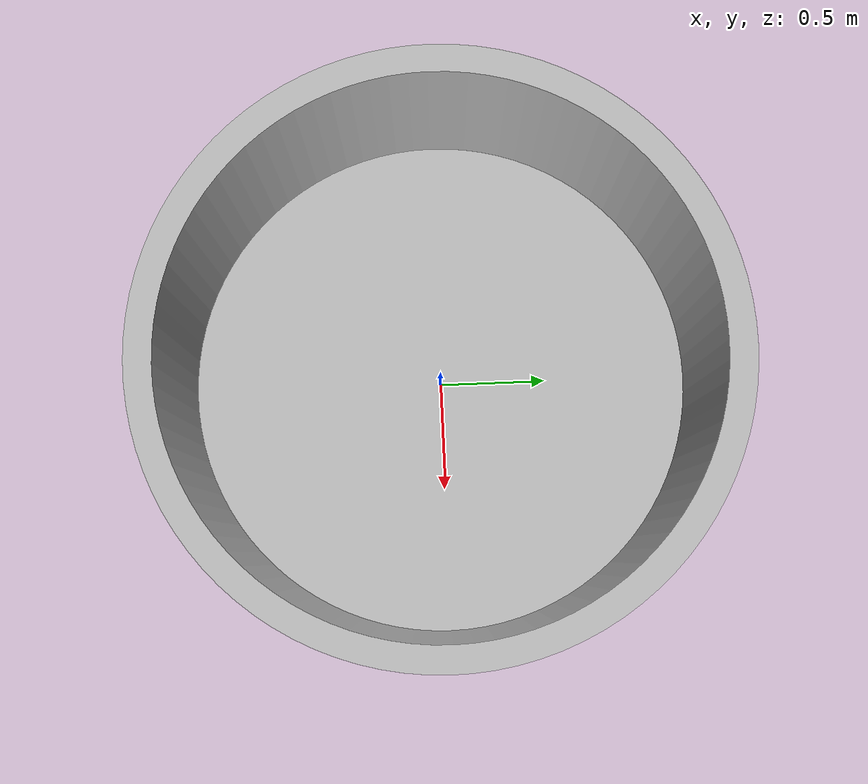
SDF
<?xml version="1.0" ?>
<sdf version="1.6">
  <model name="cylinder_sonar_tank">
    <link name="link">
      <inertial>
        <pose>0 0 0 0 0 0</pose>
        <mass>1000.0</mass>
        <inertia>
          <ixx>0.083</ixx>
          <ixy>0.0</ixy>
          <ixz>0.0</ixz>
          <iyy>0.083</iyy>
          <iyz>0.0</iyz>
          <izz>0.083</izz>
        </inertia>
      </inertial>
      <collision name="collision">
        <geometry>
          <mesh>
            <uri>model://cylinder_sonar_tank/meshes/cylinder_sonar_tank.stl</uri>
            <!-- inner diameter of 92". The water is ~48" deep -->
            <scale>1.1684 1.1684 0.6096</scale>
          </mesh>
        </geometry>
      </collision>
      <visual name="visual">
        <geometry>
          <mesh>
            <uri>model://cylinder_sonar_tank/meshes/COLLISION_cylinder_sonar_tank.stl</uri>
            <!-- inner diameter of 92". The water is ~48" deep -->
            <scale>1.1684 1.1684 0.6096</scale>
          </mesh>
        </geometry>
      </visual>
    </link>
  </model>
</sdf>
